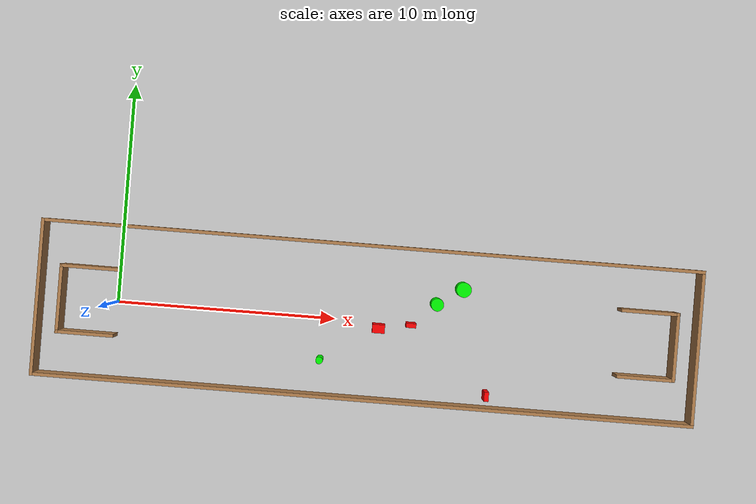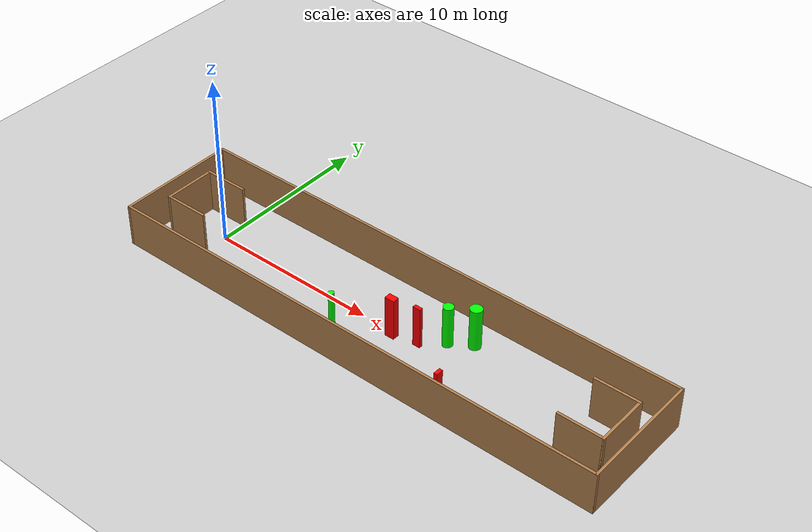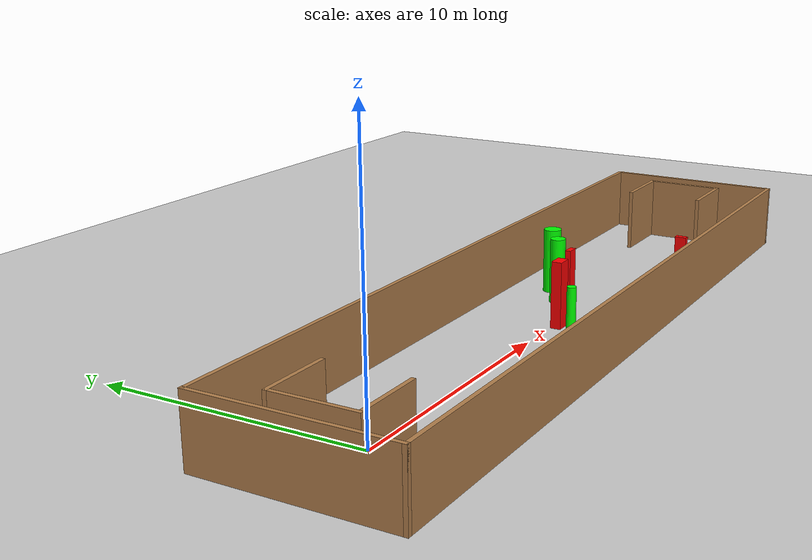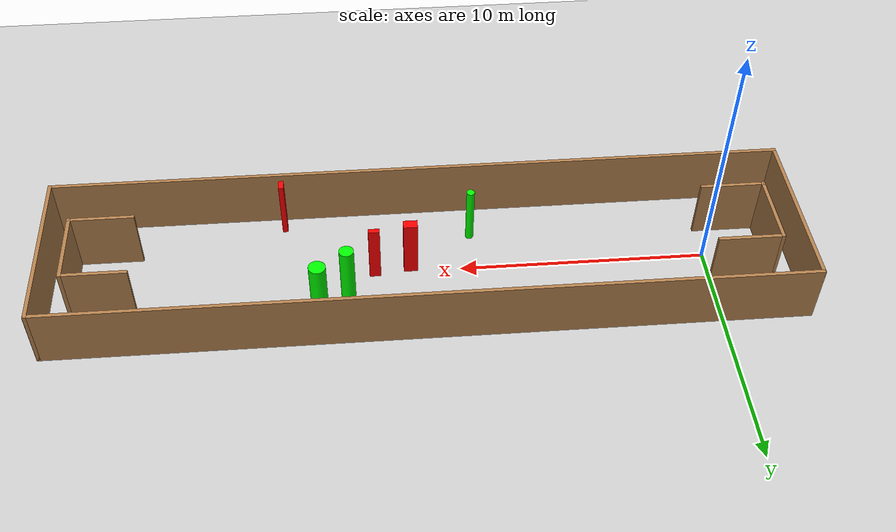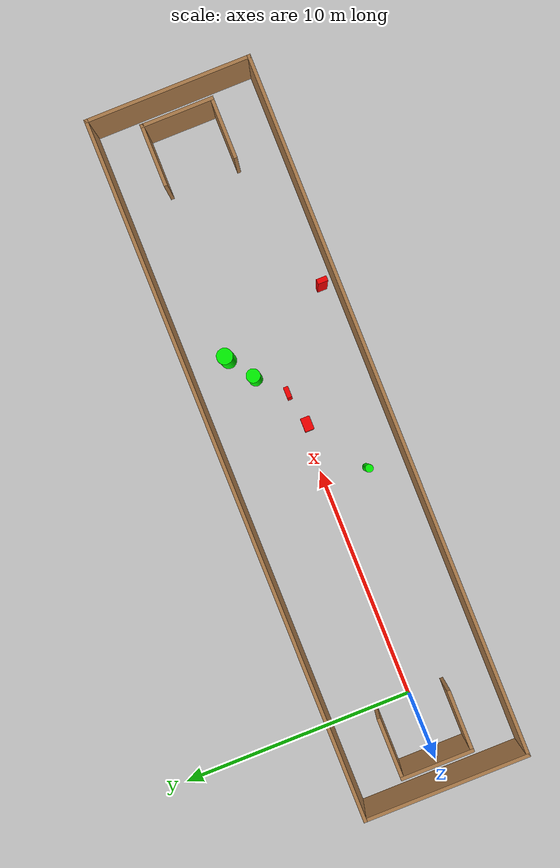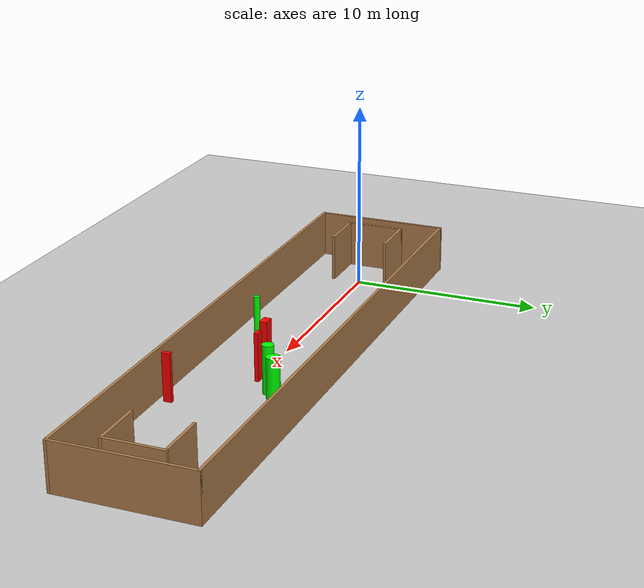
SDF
<sdf version="1.7">
 <world name="default">
  <light name="sun" type="directional">
   <pose>0 0 10 0 -0 0</pose>
   <diffuse>0.8 0.8 0.8 1</diffuse>
   <specular>0.2 0.2 0.2 1</specular>
   <attenuation>
    <range>1000</range>
    <constant>0.9</constant>
    <linear>0.01</linear>
    <quadratic>0.001</quadratic>
   </attenuation>
   <direction>-0.5 0.1 -0.9</direction>
   <spot><inner_angle>0</inner_angle><outer_angle>0</outer_angle><falloff>0</falloff></spot>
  </light>
  <model name="ground_plane">
   <static>1</static>
   <link name="link">
    <collision name="collision">
     <geometry><plane><normal>0 0 1</normal><size>100 100</size></plane></geometry>
     <surface>
      <contact><collide_bitmask>65535</collide_bitmask></contact>
      <friction><ode><mu>100</mu><mu2>50</mu2></ode></friction>
     </surface>
    </collision>
    <visual name="visual">
     <cast_shadows>0</cast_shadows>
     <geometry><plane><normal>0 0 1</normal><size>100 100</size></plane></geometry>
     <material>
      <script><uri>file://media/materials/scripts/gazebo.material</uri><name>Gazebo/Grey</name></script>
     </material>
    </visual>
   </link>
  </model>
  <gravity>0 0 -9.8</gravity>
  <magnetic_field>6e-06 2.3e-05 -4.2e-05</magnetic_field>
  <atmosphere type="adiabatic"/>
  <physics type="ode">
   <max_step_size>0.001</max_step_size>
   <real_time_factor>1</real_time_factor>
   <real_time_update_rate>1000</real_time_update_rate>
  </physics>
  <scene><ambient>0.4 0.4 0.4 1</ambient><background>0.7 0.7 0.7 1</background><shadows>1</shadows></scene>
  <spherical_coordinates>
   <surface_model>EARTH_WGS84</surface_model>
   <latitude_deg>0</latitude_deg>
   <longitude_deg>0</longitude_deg>
   <elevation>0</elevation>
   <heading_deg>0</heading_deg>
  </spherical_coordinates>
  <model name="my_base_walls">
   <link name="Wall_0">
    <collision name="Wall_0_Collision">
     <geometry><box><size>7.15 0.15 2.5</size></box></geometry>
     <pose>0 0 1.25 0 -0 0</pose>
    </collision>
    <visual name="Wall_0_Visual">
     <pose>0 0 1.25 0 -0 0</pose>
     <geometry><box><size>7.15 0.15 2.5</size></box></geometry>
     <material>
      <script><uri>file://media/materials/scripts/gazebo.material</uri><name>Gazebo/Wood</name></script>
      <ambient>1 1 1 1</ambient>
     </material>
     <meta><layer>0</layer></meta>
    </visual>
    <pose>-15 0 0 0 -0 1.5708</pose>
   </link>
   <link name="Wall_10">
    <collision name="Wall_10_Collision">
     <geometry><box><size>2.65 0.15 2.5</size></box></geometry>
     <pose>0 0 1.25 0 -0 0</pose>
    </collision>
    <visual name="Wall_10_Visual">
     <pose>0 0 1.25 0 -0 0</pose>
     <geometry><box><size>2.65 0.15 2.5</size></box></geometry>
     <material>
      <script><uri>file://media/materials/scripts/gazebo.material</uri><name>Gazebo/Wood</name></script>
      <ambient>1 1 1 1</ambient>
     </material>
     <meta><layer>0</layer></meta>
    </visual>
    <pose>-12.75 -1.5 0 0 -0 0</pose>
   </link>
   <link name="Wall_12">
    <collision name="Wall_12_Collision">
     <geometry><box><size>2.65 0.15 2.5</size></box></geometry>
     <pose>0 0 1.25 0 -0 0</pose>
    </collision>
    <visual name="Wall_12_Visual">
     <pose>0 0 1.25 0 -0 0</pose>
     <geometry><box><size>2.65 0.15 2.5</size></box></geometry>
     <material>
      <script><uri>file://media/materials/scripts/gazebo.material</uri><name>Gazebo/Wood</name></script>
      <ambient>1 1 1 1</ambient>
     </material>
     <meta><layer>0</layer></meta>
    </visual>
    <pose>-12.75 1.5 0 0 -0 0</pose>
   </link>
   <link name="Wall_14">
    <collision name="Wall_14_Collision">
     <geometry><box><size>3.15 0.15 2.5</size></box></geometry>
     <pose>0 0 1.25 0 -0 0</pose>
    </collision>
    <visual name="Wall_14_Visual">
     <pose>0 0 1.25 0 -0 0</pose>
     <geometry><box><size>3.15 0.15 2.5</size></box></geometry>
     <material>
      <script><uri>file://media/materials/scripts/gazebo.material</uri><name>Gazebo/Wood</name></script>
      <ambient>1 1 1 1</ambient>
     </material>
     <meta><layer>0</layer></meta>
    </visual>
    <pose>14 0 0 0 -0 -1.5708</pose>
   </link>
   <link name="Wall_15">
    <collision name="Wall_15_Collision">
     <geometry><box><size>2.65 0.15 2.5</size></box></geometry>
     <pose>0 0 1.25 0 -0 0</pose>
    </collision>
    <visual name="Wall_15_Visual">
     <pose>0 0 1.25 0 -0 0</pose>
     <geometry><box><size>2.65 0.15 2.5</size></box></geometry>
     <material>
      <script><uri>file://media/materials/scripts/gazebo.material</uri><name>Gazebo/Wood</name></script>
      <ambient>1 1 1 1</ambient>
     </material>
     <meta><layer>0</layer></meta>
    </visual>
    <pose>12.75 -1.5 0 0 -0 3.14159</pose>
   </link>
   <link name="Wall_17">
    <collision name="Wall_17_Collision">
     <geometry><box><size>2.65 0.15 2.5</size></box></geometry>
     <pose>0 0 1.25 0 -0 0</pose>
    </collision>
    <visual name="Wall_17_Visual">
     <pose>0 0 1.25 0 -0 0</pose>
     <geometry><box><size>2.65 0.15 2.5</size></box></geometry>
     <material>
      <script><uri>file://media/materials/scripts/gazebo.material</uri><name>Gazebo/Wood</name></script>
      <ambient>1 1 1 1</ambient>
     </material>
     <meta><layer>0</layer></meta>
    </visual>
    <pose>12.75 1.5 0 0 -0 3.14159</pose>
   </link>
   <link name="Wall_2">
    <collision name="Wall_2_Collision">
     <geometry><box><size>30.15 0.15 2.5</size></box></geometry>
     <pose>0 0 1.25 0 -0 0</pose>
    </collision>
    <visual name="Wall_2_Visual">
     <pose>0 0 1.25 0 -0 0</pose>
     <geometry><box><size>30.15 0.15 2.5</size></box></geometry>
     <material>
      <script><uri>file://media/materials/scripts/gazebo.material</uri><name>Gazebo/Wood</name></script>
      <ambient>1 1 1 1</ambient>
     </material>
     <meta><layer>0</layer></meta>
    </visual>
    <pose>-0 -3.5 0 0 -0 0</pose>
   </link>
   <link name="Wall_4">
    <collision name="Wall_4_Collision">
     <geometry><box><size>30.15 0.15 2.5</size></box></geometry>
     <pose>0 0 1.25 0 -0 0</pose>
    </collision>
    <visual name="Wall_4_Visual">
     <pose>0 0 1.25 0 -0 0</pose>
     <geometry><box><size>30.15 0.15 2.5</size></box></geometry>
     <material>
      <script><uri>file://media/materials/scripts/gazebo.material</uri><name>Gazebo/Wood</name></script>
      <ambient>1 1 1 1</ambient>
     </material>
     <meta><layer>0</layer></meta>
    </visual>
    <pose>-0 3.5 0 0 -0 0</pose>
   </link>
   <link name="Wall_6">
    <collision name="Wall_6_Collision">
     <geometry><box><size>7.15 0.15 2.5</size></box></geometry>
     <pose>0 0 1.25 0 -0 0</pose>
    </collision>
    <visual name="Wall_6_Visual">
     <pose>0 0 1.25 0 -0 0</pose>
     <geometry><box><size>7.15 0.15 2.5</size></box></geometry>
     <material>
      <script><uri>file://media/materials/scripts/gazebo.material</uri><name>Gazebo/Wood</name></script>
      <ambient>1 1 1 1</ambient>
     </material>
     <meta><layer>0</layer></meta>
    </visual>
    <pose>15 0 0 0 -0 -1.5708</pose>
   </link>
   <link name="Wall_9">
    <collision name="Wall_9_Collision">
     <geometry><box><size>3.15 0.15 2.5</size></box></geometry>
     <pose>0 0 1.25 0 -0 0</pose>
    </collision>
    <visual name="Wall_9_Visual">
     <pose>0 0 1.25 0 -0 0</pose>
     <geometry><box><size>3.15 0.15 2.5</size></box></geometry>
     <material>
      <script><uri>file://media/materials/scripts/gazebo.material</uri><name>Gazebo/Wood</name></script>
      <ambient>1 1 1 1</ambient>
     </material>
     <meta><layer>0</layer></meta>
    </visual>
    <pose>-14 0 0 0 -0 -1.5708</pose>
   </link>
   <static>1</static>
   <pose>11.5 0 0 0 -0 0</pose>
  </model>
  <model name="cylinder1">
   <static>1</static>
   <link name="link">
    <inertial>
     <mass>1</mass>
     <inertia><ixx>0.5</ixx><ixy>0</ixy><ixz>0</ixz><iyy>0.5</iyy><iyz>0</iyz><izz>1</izz></inertia>
    </inertial>
    <collision name="collision">
     <geometry><cylinder><radius>0.16354693563833547</radius><length>2.5</length></cylinder></geometry>
    </collision>
    <visual name="visual">
     <geometry><cylinder><radius>0.16354693563833547</radius><length>2.5</length></cylinder></geometry>
     <material>
      <ambient>0 1 0 1</ambient>
      <diffuse>0 1 0 1</diffuse>
      <specular>0.1 0.1 0.1 1</specular>
      <emissive>0 0 0 0</emissive>
     </material>
    </visual>
   </link>
   <pose>9.455882856820786 -1.8589330387334222 1.25 0 0 0</pose>
  </model>
  <model name="cylinder2">
   <static>1</static>
   <link name="link">
    <inertial>
     <mass>1</mass>
     <inertia><ixx>0.5</ixx><ixy>0</ixy><ixz>0</ixz><iyy>0.5</iyy><iyz>0</iyz><izz>1</izz></inertia>
    </inertial>
    <collision name="collision">
     <geometry><cylinder><radius>0.338787498066002</radius><length>2.5</length></cylinder></geometry>
    </collision>
    <visual name="visual">
     <geometry><cylinder><radius>0.338787498066002</radius><length>2.5</length></cylinder></geometry>
     <material>
      <ambient>0 1 0 1</ambient>
      <diffuse>0 1 0 1</diffuse>
      <specular>0.1 0.1 0.1 1</specular>
      <emissive>0 0 0 0</emissive>
     </material>
    </visual>
   </link>
   <pose>15.74115154941348 1.838293118685515 1.25 0 0 0</pose>
  </model>
  <model name="cylinder3">
   <static>1</static>
   <link name="link">
    <inertial>
     <mass>1</mass>
     <inertia><ixx>0.5</ixx><ixy>0</ixy><ixz>0</ixz><iyy>0.5</iyy><iyz>0</iyz><izz>1</izz></inertia>
    </inertial>
    <collision name="collision">
     <geometry><cylinder><radius>0.2920012505599019</radius><length>2.5</length></cylinder></geometry>
    </collision>
    <visual name="visual">
     <geometry><cylinder><radius>0.2920012505599019</radius><length>2.5</length></cylinder></geometry>
     <material>
      <ambient>0 1 0 1</ambient>
      <diffuse>0 1 0 1</diffuse>
      <specular>0.1 0.1 0.1 1</specular>
      <emissive>0 0 0 0</emissive>
     </material>
    </visual>
   </link>
   <pose>14.594943116108052 1.0707423221527677 1.25 0 0 0</pose>
  </model>
  <model name="box1">
   <static>1</static>
   <link name="link">
    <inertial>
     <mass>1</mass>
     <inertia><ixx>0.083</ixx><ixy>0</ixy><ixz>0</ixz><iyy>0.083</iyy><iyz>0</iyz><izz>0.083</izz></inertia>
    </inertial>
    <collision name="collision">
     <geometry><box><size>0.45631857035116175 0.20403851924660585 2.5</size></box></geometry>
    </collision>
    <visual name="visual">
     <geometry><box><size>0.45631857035116175 0.20403851924660585 2.5</size></box></geometry>
     <material>
      <ambient>1 0 0 1</ambient>
      <diffuse>1 0 0 1</diffuse>
      <specular>0.1 0.1 0.1 1</specular>
      <emissive>0 0 0 0</emissive>
     </material>
    </visual>
    <sensor name="my_contact" type="contact">
     <contact><collision>box_collision</collision><topic>__default_topic__</topic></contact>
    </sensor>
   </link>
   <pose>13.48180247442259 0.041619455198978805 1.25 0 0 0</pose>
  </model>
  <model name="box2">
   <static>1</static>
   <link name="link">
    <inertial>
     <mass>1</mass>
     <inertia><ixx>0.083</ixx><ixy>0</ixy><ixz>0</ixz><iyy>0.083</iyy><iyz>0</iyz><izz>0.083</izz></inertia>
    </inertial>
    <collision name="collision">
     <geometry><box><size>0.20901150105637814 0.4283596854124932 2.5</size></box></geometry>
    </collision>
    <visual name="visual">
     <geometry><box><size>0.20901150105637814 0.4283596854124932 2.5</size></box></geometry>
     <material>
      <ambient>1 0 0 1</ambient>
      <diffuse>1 0 0 1</diffuse>
      <specular>0.1 0.1 0.1 1</specular>
      <emissive>0 0 0 0</emissive>
     </material>
    </visual>
    <sensor name="my_contact" type="contact">
     <contact><collision>box_collision</collision><topic>__default_topic__</topic></contact>
    </sensor>
   </link>
   <pose>17.127930165674417 -2.899227900961154 1.25 0 0 0</pose>
  </model>
  <model name="box3">
   <static>1</static>
   <link name="link">
    <inertial>
     <mass>1</mass>
     <inertia><ixx>0.083</ixx><ixy>0</ixy><ixz>0</ixz><iyy>0.083</iyy><iyz>0</iyz><izz>0.083</izz></inertia>
    </inertial>
    <collision name="collision">
     <geometry><box><size>0.5675418976760525 0.389719933478376 2.5</size></box></geometry>
    </collision>
    <visual name="visual">
     <geometry><box><size>0.5675418976760525 0.389719933478376 2.5</size></box></geometry>
     <material>
      <ambient>1 0 0 1</ambient>
      <diffuse>1 0 0 1</diffuse>
      <specular>0.1 0.1 0.1 1</specular>
      <emissive>0 0 0 0</emissive>
     </material>
    </visual>
    <sensor name="my_contact" type="contact">
     <contact><collision>box_collision</collision><topic>__default_topic__</topic></contact>
    </sensor>
   </link>
   <pose>12.01964833167943 -0.2212113459562075 1.25 0 0 0</pose>
  </model>
 </world>
</sdf>
